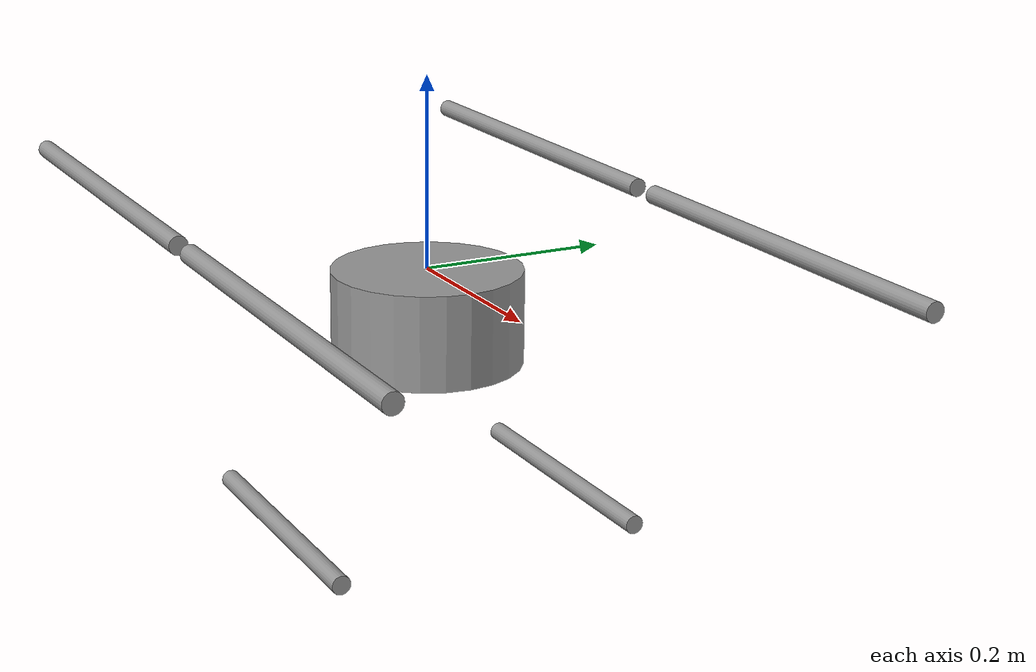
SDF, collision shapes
<?xml version="1.0" encoding="utf-8"?>
<sdf version='1.10'>

  <model name="cand_mrs_m690">

    <link name="base_link">

      <!-- Body visuals {-->

      <!-- Central board {-->
      <visual name="central_board_visual">
    <pose>0 0 0 0 0 0</pose>
    <geometry>
      <mesh>
        <uri>model://mrs_robots_description/meshes/t_drones/m690b/t_drone_m690b_central_body.stl</uri>
        <scale>1 1 1</scale>
      </mesh>
    </geometry>
    <material>
      <script>
        <name>Gazebo/Grey</name>
        <uri>file://media/materials/scripts/gazebo.material</uri>
      </script>
    </material>
  </visual>

      <!-- Arms {-->
      <visual name="arm_back_right_visual">
    <pose>0 0 0 0 0 0</pose>
    <geometry>
      <mesh>
        <uri>model://mrs_robots_description/meshes/t_drones/m690b/t_drone_m690b_arm.stl</uri>
        <scale>1 1 1</scale>
      </mesh>
    </geometry>
    <material>
      <script>
        <name>Gazebo/Grey</name>
        <uri>file://media/materials/scripts/gazebo.material</uri>
      </script>
    </material>
  </visual>

      <visual name="arm_back_left_visual">
    <pose>0 0 0 0 0 0</pose>
    <geometry>
      <mesh>
        <uri>model://mrs_robots_description/meshes/t_drones/m690b/t_drone_m690b_arm.stl</uri>
        <scale>1 -1 1</scale>
      </mesh>
    </geometry>
    <material>
      <script>
        <name>Gazebo/Grey</name>
        <uri>file://media/materials/scripts/gazebo.material</uri>
      </script>
    </material>
  </visual>

      <visual name="arm_front_left_visual">
    <pose>0 0 0 0 0 3.141592653589793</pose>
    <geometry>
      <mesh>
        <uri>model://mrs_robots_description/meshes/t_drones/m690b/t_drone_m690b_arm.stl</uri>
        <scale>1 1 1</scale>
      </mesh>
    </geometry>
    <material>
      <script>
        <name>Gazebo/Grey</name>
        <uri>file://media/materials/scripts/gazebo.material</uri>
      </script>
    </material>
  </visual>

      <visual name="arm_front_right_visual">
    <pose>0 0 0 0 0 3.141592653589793</pose>
    <geometry>
      <mesh>
        <uri>model://mrs_robots_description/meshes/t_drones/m690b/t_drone_m690b_arm.stl</uri>
        <scale>1 -1 1</scale>
      </mesh>
    </geometry>
    <material>
      <script>
        <name>Gazebo/Grey</name>
        <uri>file://media/materials/scripts/gazebo.material</uri>
      </script>
    </material>
  </visual>

      <!-- Legs {-->
      <visual name="legs_visual">
    <pose>0 0 0 0 0 0</pose>
    <geometry>
      <mesh>
        <uri>model://mrs_robots_description/meshes/t_drones/m690b/t_drone_m690b_legs.stl</uri>
        <scale>1 1 1</scale>
      </mesh>
    </geometry>
    <material>
      <script>
        <name>Gazebo/Grey</name>
        <uri>file://media/materials/scripts/gazebo.material</uri>
      </script>
    </material>
  </visual>

      <collision name="leg_right_collision">
    <pose>0 0.165 -0.258 0 -1.5707963267948966 0</pose>
    <geometry>
      <cylinder>
        <length>0.3</length>
        <radius>0.01</radius>
      </cylinder>
    </geometry>
    <surface>
      <contact>
        <ode>
          <min_depth>0.01</min_depth>
          <max_vel>0.0</max_vel>
        </ode>
      </contact>
      <friction>
        <ode/>
      </friction>
    </surface>
  </collision>

      <collision name="leg_left_collision">
    <pose>0 -0.165 -0.258 0 -1.5707963267948966 0</pose>
    <geometry>
      <cylinder>
        <length>0.3</length>
        <radius>0.01</radius>
      </cylinder>
    </geometry>
    <surface>
      <contact>
        <ode>
          <min_depth>0.01</min_depth>
          <max_vel>0.0</max_vel>
        </ode>
      </contact>
      <friction>
        <ode/>
      </friction>
    </surface>
  </collision>

      <!-- Battery {-->
      <visual name="battery_visual">
    <pose>0 0 0 0 0 0</pose>
    <geometry>
      <mesh>
        <uri>model://mrs_robots_description/meshes/t_drones/m690b/t_drone_m690b_battery.stl</uri>
        <scale>1 1 1</scale>
      </mesh>
    </geometry>
    <material>
      <script>
        <name>Gazebo/Grey</name>
        <uri>file://media/materials/scripts/gazebo.material</uri>
      </script>
    </material>
  </visual>

    <!-- Body physics {-->
    <inertial>
    <mass>4.65</mass>
    <inertia>
      <ixx>0.07362500000000001</ixx>
      <ixy>0</ixy>
      <ixz>0</ixz>
      <iyy>0.07362500000000001</iyy>
      <iyz>0</iyz>
      <izz>0.1453125</izz>
    </inertia>
  </inertial>
  <collision name="base_link_collision">
    <pose>0 0 -0.05 0 0 0</pose>
    <geometry>
      <cylinder>
        <length>0.1</length>
        <radius>0.1</radius>
      </cylinder>
    </geometry>
    <surface>
      <contact>
        <ode>
          <min_depth>0.001</min_depth>
          <max_vel>0.0</max_vel>
        </ode>
      </contact>
      <friction>
        <ode/>
      </friction>
    </surface>
  </collision>

      <!-- PX4 sensors {-->

      <!-- barometer {-->
      <!-- Noise modeled after BMP390 -->
      <sensor name="air_pressure_sensor" type="air_pressure">
  <always_on>1</always_on>
  <update_rate>50</update_rate>
  <air_pressure>
    <pressure>
      <noise type="gaussian">
        <mean>0</mean>
        <stddev>3</stddev>
      </noise>
    </pressure>
  </air_pressure>
</sensor>

      <!-- magnetometer {-->
      <!-- Noise modeled after IIS2MDC -->
      <sensor name="magnetometer_sensor" type="magnetometer">
  <always_on>1</always_on>
  <update_rate>100</update_rate>
  <magnetometer>
    <!-- TODO: update to fix units and coordinate system when we move past Harmonic -->
    <!-- See https://github.com/gazebosim/gz-sim/pull/2460 -->
    <!-- 3mgauss RMS: NOTE: noise is in tesla but sensor reports data in gauss -->
    <x>
      <noise type="gaussian">
        <stddev>0.0001</stddev>
      </noise>
    </x>
    <y>
      <noise type="gaussian">
        <stddev>0.0001</stddev>
      </noise>
    </y>
    <z>
      <noise type="gaussian">
        <stddev>0.0001</stddev>
      </noise>
    </z>
  </magnetometer>
</sensor>

      <!-- GPS {-->
      <sensor name="navsat_sensor" type="navsat">
  <always_on>1</always_on>
  <update_rate>10</update_rate>
</sensor>

      <!-- IMU {-->
      <!-- Noise modeled after IIM42653 -->
      <sensor name="imu_sensor" type="imu">
  <always_on>1</always_on>
  <update_rate>250</update_rate>
  <imu>
    <angular_velocity>
      <!-- 0.05 deg/s converted to rad/s -->
      <x>
        <noise type="gaussian">
          <mean>0.0</mean>
          <stddev>0.0008726646</stddev>
        </noise>
      </x>
      <y>
        <noise type="gaussian">
          <mean>0.0</mean>
          <stddev>0.0008726646</stddev>
        </noise>
      </y>
      <z>
        <noise type="gaussian">
          <mean>0.0</mean>
          <stddev>0.0008726646</stddev>
        </noise>
      </z>
    </angular_velocity>
    <linear_acceleration>
      <!-- X & Y axis: 0.65 mg-rms converted to m/ss -->
      <x>
        <noise type="gaussian">
          <mean>0.0</mean>
          <stddev>0.00637</stddev>
        </noise>
      </x>
      <y>
        <noise type="gaussian">
          <mean>0.0</mean>
          <stddev>0.00637</stddev>
        </noise>
      </y>
      <!-- Z axis: 0.70 mg-rms converted to m/ss-->
      <z>
        <noise type="gaussian">
          <mean>0.0</mean>
          <stddev>0.00686</stddev>
        </noise>
      </z>
    </linear_acceleration>
  </imu>
</sensor>

    </link>

  <!-- Propellers {--><!-- Propeller 0 {-->
      <link name="prop_0_link">
    <pose>0.245 -0.26 0.052 0 0 0</pose>
    <inertial>
      <mass>0.02</mass>
      <inertia>
        <ixx>0.0002612964666666666</ixx>
        <ixy>0</ixy>
        <ixz>0</ixz>
        <iyy>0.0002612964666666666</iyy>
        <iyz>0</iyz>
        <izz>0.0005225796</izz>
      </inertia>
    </inertial>
    <visual name="prop_0_first_visual">
  <pose>0 0 0 0 0 0</pose>
  <geometry>
    <mesh>
      <uri>model://mrs_robots_description/meshes/t_drones/m690b/t_drone_m690b_propeller.stl</uri>
      <scale>1 1 1</scale>
    </mesh>
  </geometry>
</visual>
    <visual name="prop_0_second_visual">
    <pose>0 0 -0.012 0 0 0</pose>
    <geometry>
      <mesh>
        <uri>model://mrs_robots_description/meshes/t_drones/m690b/t_drone_m690b_motor_top_part.stl</uri>
        <scale>1 1 1</scale>
      </mesh>
    </geometry>
    <material>
      <script>
        <name>Gazebo/Grey</name>
        <uri>file://media/materials/scripts/gazebo.material</uri>
      </script>
    </material>
  </visual>
    <collision name="prop_0_link_collision">
    <pose>0 0 0 0 1.5707963267948966 0</pose>
    <geometry>
      <cylinder>
        <length>0.4572</length>
        <radius>0.01</radius>
      </cylinder>
    </geometry>
    <surface>
      <contact>
        <ode>
          <min_depth>0.01</min_depth>
          <max_vel>0.0</max_vel>
        </ode>
      </contact>
      <friction>
        <ode/>
      </friction>
    </surface>
  </collision>
  </link>
  <plugin filename="MrsGazeboCommonResources_MulticopterMotorModel" name="gz::sim::systems::MrsMulticopterMotorModel">
    <jointName>prop_0_joint</jointName>
    <linkName>prop_0_link</linkName>
    <turningDirection>ccw</turningDirection>
    <timeConstantUp>0.0125</timeConstantUp>
    <timeConstantDown>0.025</timeConstantDown>
    <maxRotVelocity>780</maxRotVelocity>
    <motorConstant>7.7e-5</motorConstant>
    <momentConstant>0.07</momentConstant>
    <commandSubTopic>command/motor_speed</commandSubTopic>
    <actuator_number>0</actuator_number>
    <rotorDragCoefficient>1.0e-4</rotorDragCoefficient>
    <rollingMomentCoefficient>1.0e-6</rollingMomentCoefficient>
    <rotorVelocitySlowdownSim>12</rotorVelocitySlowdownSim>
    <motorType>velocity</motorType>
    <robotNamespace>cand_mrs_m690</robotNamespace>
  </plugin>
  <joint name="prop_0_joint" type="revolute">
    <parent>base_link</parent>
    <child>prop_0_link</child>
    <axis>
      <xyz>0 0 1</xyz>
      <limit>
        <lower>-1e+16</lower>
        <upper>1e+16</upper>
      </limit>
      <dynamics>
        <spring_reference>0</spring_reference>
        <spring_stiffness>0</spring_stiffness>
      </dynamics>
    </axis>
  </joint>
      <!-- Propeller 1 {-->
      <link name="prop_1_link">
    <pose>-0.245 0.26 0.052 0 0 0</pose>
    <inertial>
      <mass>0.02</mass>
      <inertia>
        <ixx>0.0002612964666666666</ixx>
        <ixy>0</ixy>
        <ixz>0</ixz>
        <iyy>0.0002612964666666666</iyy>
        <iyz>0</iyz>
        <izz>0.0005225796</izz>
      </inertia>
    </inertial>
    <visual name="prop_1_first_visual">
  <pose>0 0 0 0 0 0</pose>
  <geometry>
    <mesh>
      <uri>model://mrs_robots_description/meshes/t_drones/m690b/t_drone_m690b_propeller.stl</uri>
      <scale>1 1 1</scale>
    </mesh>
  </geometry>
</visual>
    <visual name="prop_1_second_visual">
    <pose>0 0 -0.012 0 0 0</pose>
    <geometry>
      <mesh>
        <uri>model://mrs_robots_description/meshes/t_drones/m690b/t_drone_m690b_motor_top_part.stl</uri>
        <scale>1 1 1</scale>
      </mesh>
    </geometry>
    <material>
      <script>
        <name>Gazebo/Grey</name>
        <uri>file://media/materials/scripts/gazebo.material</uri>
      </script>
    </material>
  </visual>
    <collision name="prop_1_link_collision">
    <pose>0 0 0 0 1.5707963267948966 0</pose>
    <geometry>
      <cylinder>
        <length>0.4572</length>
        <radius>0.01</radius>
      </cylinder>
    </geometry>
    <surface>
      <contact>
        <ode>
          <min_depth>0.01</min_depth>
          <max_vel>0.0</max_vel>
        </ode>
      </contact>
      <friction>
        <ode/>
      </friction>
    </surface>
  </collision>
  </link>
  <plugin filename="MrsGazeboCommonResources_MulticopterMotorModel" name="gz::sim::systems::MrsMulticopterMotorModel">
    <jointName>prop_1_joint</jointName>
    <linkName>prop_1_link</linkName>
    <turningDirection>ccw</turningDirection>
    <timeConstantUp>0.0125</timeConstantUp>
    <timeConstantDown>0.025</timeConstantDown>
    <maxRotVelocity>780</maxRotVelocity>
    <motorConstant>7.7e-5</motorConstant>
    <momentConstant>0.07</momentConstant>
    <commandSubTopic>command/motor_speed</commandSubTopic>
    <actuator_number>1</actuator_number>
    <rotorDragCoefficient>1.0e-4</rotorDragCoefficient>
    <rollingMomentCoefficient>1.0e-6</rollingMomentCoefficient>
    <rotorVelocitySlowdownSim>12</rotorVelocitySlowdownSim>
    <motorType>velocity</motorType>
    <robotNamespace>cand_mrs_m690</robotNamespace>
  </plugin>
  <joint name="prop_1_joint" type="revolute">
    <parent>base_link</parent>
    <child>prop_1_link</child>
    <axis>
      <xyz>0 0 1</xyz>
      <limit>
        <lower>-1e+16</lower>
        <upper>1e+16</upper>
      </limit>
      <dynamics>
        <spring_reference>0</spring_reference>
        <spring_stiffness>0</spring_stiffness>
      </dynamics>
    </axis>
  </joint>
      <!-- Propeller 2 {-->
      <link name="prop_2_link">
    <pose>0.245 0.26 0.052 0 0 0</pose>
    <inertial>
      <mass>0.02</mass>
      <inertia>
        <ixx>0.0002612964666666666</ixx>
        <ixy>0</ixy>
        <ixz>0</ixz>
        <iyy>0.0002612964666666666</iyy>
        <iyz>0</iyz>
        <izz>0.0005225796</izz>
      </inertia>
    </inertial>
    <visual name="prop_2_first_visual">
  <pose>0 0 0 0 0 0</pose>
  <geometry>
    <mesh>
      <uri>model://mrs_robots_description/meshes/t_drones/m690b/t_drone_m690b_propeller.stl</uri>
      <scale>-1 1 1</scale>
    </mesh>
  </geometry>
</visual>
    <visual name="prop_2_second_visual">
    <pose>0 0 -0.012 0 0 0</pose>
    <geometry>
      <mesh>
        <uri>model://mrs_robots_description/meshes/t_drones/m690b/t_drone_m690b_motor_top_part.stl</uri>
        <scale>-1 1 1</scale>
      </mesh>
    </geometry>
    <material>
      <script>
        <name>Gazebo/Grey</name>
        <uri>file://media/materials/scripts/gazebo.material</uri>
      </script>
    </material>
  </visual>
    <collision name="prop_2_link_collision">
    <pose>0 0 0 0 1.5707963267948966 0</pose>
    <geometry>
      <cylinder>
        <length>0.4572</length>
        <radius>0.01</radius>
      </cylinder>
    </geometry>
    <surface>
      <contact>
        <ode>
          <min_depth>0.01</min_depth>
          <max_vel>0.0</max_vel>
        </ode>
      </contact>
      <friction>
        <ode/>
      </friction>
    </surface>
  </collision>
  </link>
  <plugin filename="MrsGazeboCommonResources_MulticopterMotorModel" name="gz::sim::systems::MrsMulticopterMotorModel">
    <jointName>prop_2_joint</jointName>
    <linkName>prop_2_link</linkName>
    <turningDirection>cw</turningDirection>
    <timeConstantUp>0.0125</timeConstantUp>
    <timeConstantDown>0.025</timeConstantDown>
    <maxRotVelocity>780</maxRotVelocity>
    <motorConstant>7.7e-5</motorConstant>
    <momentConstant>0.07</momentConstant>
    <commandSubTopic>command/motor_speed</commandSubTopic>
    <actuator_number>2</actuator_number>
    <rotorDragCoefficient>1.0e-4</rotorDragCoefficient>
    <rollingMomentCoefficient>1.0e-6</rollingMomentCoefficient>
    <rotorVelocitySlowdownSim>12</rotorVelocitySlowdownSim>
    <motorType>velocity</motorType>
    <robotNamespace>cand_mrs_m690</robotNamespace>
  </plugin>
  <joint name="prop_2_joint" type="revolute">
    <parent>base_link</parent>
    <child>prop_2_link</child>
    <axis>
      <xyz>0 0 1</xyz>
      <limit>
        <lower>-1e+16</lower>
        <upper>1e+16</upper>
      </limit>
      <dynamics>
        <spring_reference>0</spring_reference>
        <spring_stiffness>0</spring_stiffness>
      </dynamics>
    </axis>
  </joint>
      <!-- Propeller 3 {-->
      <link name="prop_3_link">
    <pose>-0.245 -0.26 0.052 0 0 0</pose>
    <inertial>
      <mass>0.02</mass>
      <inertia>
        <ixx>0.0002612964666666666</ixx>
        <ixy>0</ixy>
        <ixz>0</ixz>
        <iyy>0.0002612964666666666</iyy>
        <iyz>0</iyz>
        <izz>0.0005225796</izz>
      </inertia>
    </inertial>
    <visual name="prop_3_first_visual">
  <pose>0 0 0 0 0 0</pose>
  <geometry>
    <mesh>
      <uri>model://mrs_robots_description/meshes/t_drones/m690b/t_drone_m690b_propeller.stl</uri>
      <scale>-1 1 1</scale>
    </mesh>
  </geometry>
</visual>
    <visual name="prop_3_second_visual">
    <pose>0 0 -0.012 0 0 0</pose>
    <geometry>
      <mesh>
        <uri>model://mrs_robots_description/meshes/t_drones/m690b/t_drone_m690b_motor_top_part.stl</uri>
        <scale>-1 1 1</scale>
      </mesh>
    </geometry>
    <material>
      <script>
        <name>Gazebo/Grey</name>
        <uri>file://media/materials/scripts/gazebo.material</uri>
      </script>
    </material>
  </visual>
    <collision name="prop_3_link_collision">
    <pose>0 0 0 0 1.5707963267948966 0</pose>
    <geometry>
      <cylinder>
        <length>0.4572</length>
        <radius>0.01</radius>
      </cylinder>
    </geometry>
    <surface>
      <contact>
        <ode>
          <min_depth>0.01</min_depth>
          <max_vel>0.0</max_vel>
        </ode>
      </contact>
      <friction>
        <ode/>
      </friction>
    </surface>
  </collision>
  </link>
  <plugin filename="MrsGazeboCommonResources_MulticopterMotorModel" name="gz::sim::systems::MrsMulticopterMotorModel">
    <jointName>prop_3_joint</jointName>
    <linkName>prop_3_link</linkName>
    <turningDirection>cw</turningDirection>
    <timeConstantUp>0.0125</timeConstantUp>
    <timeConstantDown>0.025</timeConstantDown>
    <maxRotVelocity>780</maxRotVelocity>
    <motorConstant>7.7e-5</motorConstant>
    <momentConstant>0.07</momentConstant>
    <commandSubTopic>command/motor_speed</commandSubTopic>
    <actuator_number>3</actuator_number>
    <rotorDragCoefficient>1.0e-4</rotorDragCoefficient>
    <rollingMomentCoefficient>1.0e-6</rollingMomentCoefficient>
    <rotorVelocitySlowdownSim>12</rotorVelocitySlowdownSim>
    <motorType>velocity</motorType>
    <robotNamespace>cand_mrs_m690</robotNamespace>
  </plugin>
  <joint name="prop_3_joint" type="revolute">
    <parent>base_link</parent>
    <child>prop_3_link</child>
    <axis>
      <xyz>0 0 1</xyz>
      <limit>
        <lower>-1e+16</lower>
        <upper>1e+16</upper>
      </limit>
      <dynamics>
        <spring_reference>0</spring_reference>
        <spring_stiffness>0</spring_stiffness>
      </dynamics>
    </axis>
  </joint>

  </model>
</sdf>
